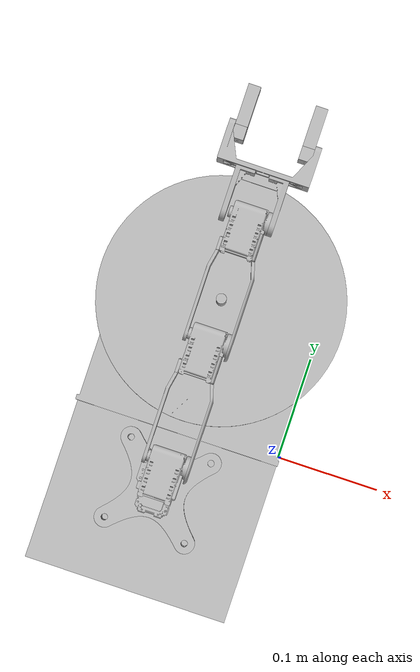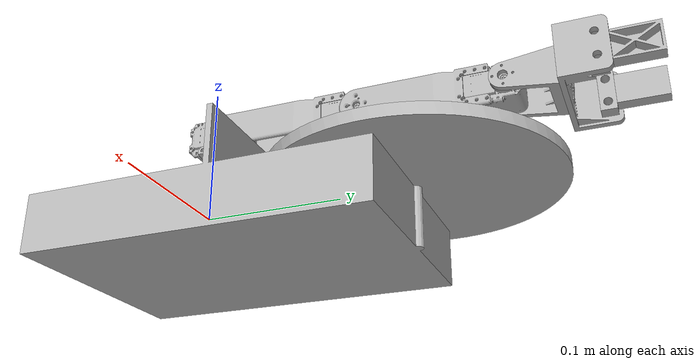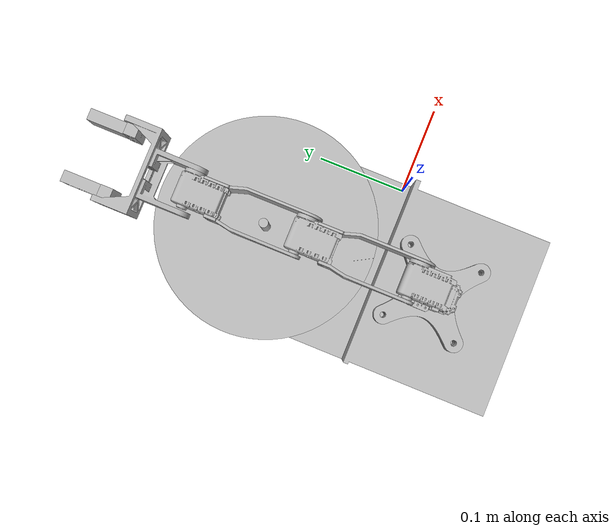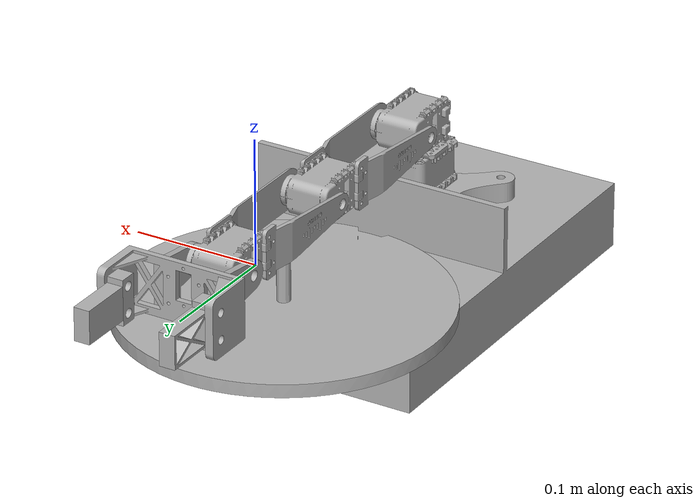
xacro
<?xml version="1.0" ?>
<robot name="stubby_complete" xmlns:xacro="http://www.ros.org/wiki/xacro">

<xacro:include filename="$(find stubby_complete_description)/urdf/materials.xacro" />
<xacro:include filename="$(find stubby_complete_description)/urdf/stubby_complete.trans" />
<xacro:include filename="$(find stubby_complete_description)/urdf/stubby_complete.gazebo" />
<link name="base_link">
  <inertial>
    <origin rpy="0 0 0" xyz="-0.09999999999999991 -0.020966127283006095 0.021818497006580385"/>
    <mass value="2.9547595128701887"/>
    <inertia ixx="0.021203" ixy="-0.0" ixz="-0.0" iyy="0.010579" iyz="-6.5e-05" izz="0.030287"/>
  </inertial>
  <visual>
    <origin rpy="0 0 0" xyz="0 0 0"/>
    <geometry>
      <mesh filename="package://stubby_complete_description/meshes/base_link.stl" scale="0.001 0.001 0.001"/>
    </geometry>
    <material name="silver"/>
  </visual>
  <collision>
    <origin rpy="0 0 0" xyz="0 0 0"/>
    <geometry>
      <mesh filename="package://stubby_complete_description/meshes/base_link.stl" scale="0.001 0.001 0.001"/>
    </geometry>
  </collision>
</link>

<link name="Component1_1">
  <inertial>
    <origin rpy="0 0 0" xyz="-0.04000000000451927 -0.03980214384253428 0.008090034598972902"/>
    <mass value="0.4759246467338889"/>
    <inertia ixx="0.000408" ixy="0.0" ixz="0.0" iyy="0.000441" iyz="-0.0" izz="0.000831"/>
  </inertial>
  <visual>
    <origin rpy="0 0 0" xyz="0.06 0.026523 -0.045914"/>
    <geometry>
      <mesh filename="package://stubby_complete_description/meshes/Component1_1.stl" scale="0.001 0.001 0.001"/>
    </geometry>
    <material name="silver"/>
  </visual>
  <collision>
    <origin rpy="0 0 0" xyz="0.06 0.026523 -0.045914"/>
    <geometry>
      <mesh filename="package://stubby_complete_description/meshes/Component1_1.stl" scale="0.001 0.001 0.001"/>
    </geometry>
  </collision>
</link>

<link name="Component2_1">
  <inertial>
    <origin rpy="0 0 0" xyz="-3.1092385663913924e-05 -0.012761856959488546 0.017058190511466446"/>
    <mass value="0.04244091097100989"/>
    <inertia ixx="1.2e-05" ixy="-0.0" ixz="0.0" iyy="7e-06" iyz="-0.0" izz="1e-05"/>
  </inertial>
  <visual>
    <origin rpy="0 0 0" xyz="0.1 0.052023 -0.060914"/>
    <geometry>
      <mesh filename="package://stubby_complete_description/meshes/Component2_1.stl" scale="0.001 0.001 0.001"/>
    </geometry>
    <material name="silver"/>
  </visual>
  <collision>
    <origin rpy="0 0 0" xyz="0.1 0.052023 -0.060914"/>
    <geometry>
      <mesh filename="package://stubby_complete_description/meshes/Component2_1.stl" scale="0.001 0.001 0.001"/>
    </geometry>
  </collision>
</link>

<link name="Component3_1">
  <inertial>
    <origin rpy="0 0 0" xyz="-3.2040751634265785e-05 4.2101147429418617e-07 0.002337181396787208"/>
    <mass value="0.02417691266422109"/>
    <inertia ixx="1e-06" ixy="-0.0" ixz="-0.0" iyy="4e-06" iyz="-0.0" izz="5e-06"/>
  </inertial>
  <visual>
    <origin rpy="0 0 0" xyz="0.1 0.052023 -0.097914"/>
    <geometry>
      <mesh filename="package://stubby_complete_description/meshes/Component3_1.stl" scale="0.001 0.001 0.001"/>
    </geometry>
    <material name="silver"/>
  </visual>
  <collision>
    <origin rpy="0 0 0" xyz="0.1 0.052023 -0.097914"/>
    <geometry>
      <mesh filename="package://stubby_complete_description/meshes/Component3_1.stl" scale="0.001 0.001 0.001"/>
    </geometry>
  </collision>
</link>

<link name="Component4_1">
  <inertial>
    <origin rpy="0 0 0" xyz="-0.01494141726061049 -0.006261856959488575 0.013530700157741146"/>
    <mass value="0.04244091097100989"/>
    <inertia ixx="1e-05" ixy="-0.0" ixz="-0.0" iyy="7e-06" iyz="0.0" izz="1.2e-05"/>
  </inertial>
  <visual>
    <origin rpy="0 0 0" xyz="0.084 0.044023 -0.103414"/>
    <geometry>
      <mesh filename="package://stubby_complete_description/meshes/Component4_1.stl" scale="0.001 0.001 0.001"/>
    </geometry>
    <material name="silver"/>
  </visual>
  <collision>
    <origin rpy="0 0 0" xyz="0.084 0.044023 -0.103414"/>
    <geometry>
      <mesh filename="package://stubby_complete_description/meshes/Component4_1.stl" scale="0.001 0.001 0.001"/>
    </geometry>
  </collision>
</link>

<link name="Component5_1">
  <inertial>
    <origin rpy="0 0 0" xyz="0.000323439859071295 0.044213030801076594 1.0167311355765984e-05"/>
    <mass value="0.07320231395363634"/>
    <inertia ixx="8e-05" ixy="4e-06" ixz="0.0" iyy="6e-06" iyz="-0.0" izz="7.5e-05"/>
  </inertial>
  <visual>
    <origin rpy="0 0 0" xyz="0.079 0.037523 -0.116914"/>
    <geometry>
      <mesh filename="package://stubby_complete_description/meshes/Component5_1.stl" scale="0.001 0.001 0.001"/>
    </geometry>
    <material name="silver"/>
  </visual>
  <collision>
    <origin rpy="0 0 0" xyz="0.079 0.037523 -0.116914"/>
    <geometry>
      <mesh filename="package://stubby_complete_description/meshes/Component5_1.stl" scale="0.001 0.001 0.001"/>
    </geometry>
  </collision>
</link>

<link name="Component6_1">
  <inertial>
    <origin rpy="0 0 0" xyz="-0.01494141726061049 0.01773814304051132 -0.013469299842258711"/>
    <mass value="0.04244091097100989"/>
    <inertia ixx="1e-05" ixy="-0.0" ixz="-0.0" iyy="7e-06" iyz="0.0" izz="1.2e-05"/>
  </inertial>
  <visual>
    <origin rpy="0 0 0" xyz="0.084 -0.051977 -0.130414"/>
    <geometry>
      <mesh filename="package://stubby_complete_description/meshes/Component6_1.stl" scale="0.001 0.001 0.001"/>
    </geometry>
    <material name="silver"/>
  </visual>
  <collision>
    <origin rpy="0 0 0" xyz="0.084 -0.051977 -0.130414"/>
    <geometry>
      <mesh filename="package://stubby_complete_description/meshes/Component6_1.stl" scale="0.001 0.001 0.001"/>
    </geometry>
  </collision>
</link>

<link name="Component7_1">
  <inertial>
    <origin rpy="0 0 0" xyz="-0.003787166400802497 -0.03908271518949953 -0.013398484021248727"/>
    <mass value="0.05604795467246254"/>
    <inertia ixx="4.5e-05" ixy="-1e-06" ixz="-0.0" iyy="4e-06" iyz="-0.0" izz="4.1e-05"/>
  </inertial>
  <visual>
    <origin rpy="0 0 0" xyz="0.116 -0.051977 -0.130414"/>
    <geometry>
      <mesh filename="package://stubby_complete_description/meshes/Component7_1.stl" scale="0.001 0.001 0.001"/>
    </geometry>
    <material name="silver"/>
  </visual>
  <collision>
    <origin rpy="0 0 0" xyz="0.116 -0.051977 -0.130414"/>
    <geometry>
      <mesh filename="package://stubby_complete_description/meshes/Component7_1.stl" scale="0.001 0.001 0.001"/>
    </geometry>
  </collision>
</link>

<link name="Component8_1">
  <inertial>
    <origin rpy="0 0 0" xyz="0.00032343985907133666 0.04421303080107655 1.0167311355960273e-05"/>
    <mass value="0.07320231395363634"/>
    <inertia ixx="8e-05" ixy="4e-06" ixz="0.0" iyy="6e-06" iyz="-0.0" izz="7.5e-05"/>
  </inertial>
  <visual>
    <origin rpy="0 0 0" xyz="0.079 -0.082477 -0.116914"/>
    <geometry>
      <mesh filename="package://stubby_complete_description/meshes/Component8_1.stl" scale="0.001 0.001 0.001"/>
    </geometry>
    <material name="silver"/>
  </visual>
  <collision>
    <origin rpy="0 0 0" xyz="0.079 -0.082477 -0.116914"/>
    <geometry>
      <mesh filename="package://stubby_complete_description/meshes/Component8_1.stl" scale="0.001 0.001 0.001"/>
    </geometry>
  </collision>
</link>

<link name="Component9_1">
  <inertial>
    <origin rpy="0 0 0" xyz="-0.014941417260610448 0.017738143040511356 -0.01346929984225867"/>
    <mass value="0.04244091097100989"/>
    <inertia ixx="1e-05" ixy="-0.0" ixz="-0.0" iyy="7e-06" iyz="0.0" izz="1.2e-05"/>
  </inertial>
  <visual>
    <origin rpy="0 0 0" xyz="0.084 -0.171977 -0.130414"/>
    <geometry>
      <mesh filename="package://stubby_complete_description/meshes/Component9_1.stl" scale="0.001 0.001 0.001"/>
    </geometry>
    <material name="silver"/>
  </visual>
  <collision>
    <origin rpy="0 0 0" xyz="0.084 -0.171977 -0.130414"/>
    <geometry>
      <mesh filename="package://stubby_complete_description/meshes/Component9_1.stl" scale="0.001 0.001 0.001"/>
    </geometry>
  </collision>
</link>

<link name="Component10_1">
  <inertial>
    <origin rpy="0 0 0" xyz="-0.0037871664008025108 -0.03908271518949957 -0.013398484021248672"/>
    <mass value="0.05604795467246254"/>
    <inertia ixx="4.5e-05" ixy="-1e-06" ixz="-0.0" iyy="4e-06" iyz="-0.0" izz="4.1e-05"/>
  </inertial>
  <visual>
    <origin rpy="0 0 0" xyz="0.116 -0.171977 -0.130414"/>
    <geometry>
      <mesh filename="package://stubby_complete_description/meshes/Component10_1.stl" scale="0.001 0.001 0.001"/>
    </geometry>
    <material name="silver"/>
  </visual>
  <collision>
    <origin rpy="0 0 0" xyz="0.116 -0.171977 -0.130414"/>
    <geometry>
      <mesh filename="package://stubby_complete_description/meshes/Component10_1.stl" scale="0.001 0.001 0.001"/>
    </geometry>
  </collision>
</link>

<link name="Component11_1">
  <inertial>
    <origin rpy="0 0 0" xyz="-0.021096269692649494 0.02403068850135351 -0.0008093901396380859"/>
    <mass value="0.13274101174114958"/>
    <inertia ixx="4e-05" ixy="-0.0" ixz="0.0" iyy="7.2e-05" iyz="1e-06" izz="9.3e-05"/>
  </inertial>
  <visual>
    <origin rpy="0 0 0" xyz="0.079 -0.202477 -0.116914"/>
    <geometry>
      <mesh filename="package://stubby_complete_description/meshes/Component11_1.stl" scale="0.001 0.001 0.001"/>
    </geometry>
    <material name="silver"/>
  </visual>
  <collision>
    <origin rpy="0 0 0" xyz="0.079 -0.202477 -0.116914"/>
    <geometry>
      <mesh filename="package://stubby_complete_description/meshes/Component11_1.stl" scale="0.001 0.001 0.001"/>
    </geometry>
  </collision>
</link>

<link name="Component12_1">
  <inertial>
    <origin rpy="0 0 0" xyz="0.012000002645184221 0.013803147559605988 0.009796072677114534"/>
    <mass value="0.24061936425261632"/>
    <inertia ixx="8.2e-05" ixy="0.0" ixz="0.0" iyy="0.00037" iyz="-1e-06" izz="0.000359"/>
  </inertial>
  <visual>
    <origin rpy="0 0 0" xyz="0.112 -0.244477 -0.106914"/>
    <geometry>
      <mesh filename="package://stubby_complete_description/meshes/Component12_1.stl" scale="0.001 0.001 0.001"/>
    </geometry>
    <material name="silver"/>
  </visual>
  <collision>
    <origin rpy="0 0 0" xyz="0.112 -0.244477 -0.106914"/>
    <geometry>
      <mesh filename="package://stubby_complete_description/meshes/Component12_1.stl" scale="0.001 0.001 0.001"/>
    </geometry>
  </collision>
</link>

<link name="Component13_1">
  <inertial>
    <origin rpy="0 0 0" xyz="-0.005999999999999797 4.2101146963124947e-07 -0.010000392072206168"/>
    <mass value="0.03388498185890325"/>
    <inertia ixx="4e-06" ixy="0.0" ixz="0.0" iyy="4e-06" iyz="0.0" izz="1e-06"/>
  </inertial>
  <visual>
    <origin rpy="0 0 0" xyz="0.061 -0.273777 -0.126914"/>
    <geometry>
      <mesh filename="package://stubby_complete_description/meshes/Component13_1.stl" scale="0.001 0.001 0.001"/>
    </geometry>
    <material name="silver"/>
  </visual>
  <collision>
    <origin rpy="0 0 0" xyz="0.061 -0.273777 -0.126914"/>
    <geometry>
      <mesh filename="package://stubby_complete_description/meshes/Component13_1.stl" scale="0.001 0.001 0.001"/>
    </geometry>
  </collision>
</link>

<link name="Component14_1">
  <inertial>
    <origin rpy="0 0 0" xyz="0.006000000000000255 4.2101146963124947e-07 -0.010000392072206238"/>
    <mass value="0.03388498185890325"/>
    <inertia ixx="4e-06" ixy="0.0" ixz="-0.0" iyy="4e-06" iyz="0.0" izz="1e-06"/>
  </inertial>
  <visual>
    <origin rpy="0 0 0" xyz="0.139 -0.273777 -0.126914"/>
    <geometry>
      <mesh filename="package://stubby_complete_description/meshes/Component14_1.stl" scale="0.001 0.001 0.001"/>
    </geometry>
    <material name="silver"/>
  </visual>
  <collision>
    <origin rpy="0 0 0" xyz="0.139 -0.273777 -0.126914"/>
    <geometry>
      <mesh filename="package://stubby_complete_description/meshes/Component14_1.stl" scale="0.001 0.001 0.001"/>
    </geometry>
  </collision>
</link>

<link name="Component15_1">
  <inertial>
    <origin rpy="0 0 0" xyz="0.0009965764718817827 0.020031481883907132 -3.9222792255766414e-07"/>
    <mass value="0.047142162662326015"/>
    <inertia ixx="1.1e-05" ixy="0.0" ixz="0.0" iyy="4e-06" iyz="0.0" izz="8e-06"/>
  </inertial>
  <visual>
    <origin rpy="0 0 0" xyz="0.133 -0.280277 -0.116914"/>
    <geometry>
      <mesh filename="package://stubby_complete_description/meshes/Component15_1.stl" scale="0.001 0.001 0.001"/>
    </geometry>
    <material name="silver"/>
  </visual>
  <collision>
    <origin rpy="0 0 0" xyz="0.133 -0.280277 -0.116914"/>
    <geometry>
      <mesh filename="package://stubby_complete_description/meshes/Component15_1.stl" scale="0.001 0.001 0.001"/>
    </geometry>
  </collision>
</link>

<link name="Component16_1">
  <inertial>
    <origin rpy="0 0 0" xyz="-0.0009965764718812414 0.020031481883907132 -3.9222792257154193e-07"/>
    <mass value="0.047142162662326015"/>
    <inertia ixx="1.1e-05" ixy="-0.0" ixz="-0.0" iyy="4e-06" iyz="-0.0" izz="8e-06"/>
  </inertial>
  <visual>
    <origin rpy="0 0 0" xyz="0.067 -0.280277 -0.116914"/>
    <geometry>
      <mesh filename="package://stubby_complete_description/meshes/Component16_1.stl" scale="0.001 0.001 0.001"/>
    </geometry>
    <material name="silver"/>
  </visual>
  <collision>
    <origin rpy="0 0 0" xyz="0.067 -0.280277 -0.116914"/>
    <geometry>
      <mesh filename="package://stubby_complete_description/meshes/Component16_1.stl" scale="0.001 0.001 0.001"/>
    </geometry>
  </collision>
</link>

<link name="Component17_1">
  <inertial>
    <origin rpy="0 0 0" xyz="-1.734723475976807e-15 0.00020255311593160574 0.004993320817949488"/>
    <mass value="0.4507941946898463"/>
    <inertia ixx="0.001622" ixy="-0.0" ixz="0.0" iyy="0.001632" iyz="-0.0" izz="0.003247"/>
  </inertial>
  <visual>
    <origin rpy="0 0 0" xyz="0.1 -0.123477 -0.045914"/>
    <geometry>
      <mesh filename="package://stubby_complete_description/meshes/Component17_1.stl" scale="0.001 0.001 0.001"/>
    </geometry>
    <material name="silver"/>
  </visual>
  <collision>
    <origin rpy="0 0 0" xyz="0.1 -0.123477 -0.045914"/>
    <geometry>
      <mesh filename="package://stubby_complete_description/meshes/Component17_1.stl" scale="0.001 0.001 0.001"/>
    </geometry>
  </collision>
</link>

<joint name="Rigid1" type="fixed">
  <origin rpy="0 0 0" xyz="-0.06 -0.026523 0.045914"/>
  <parent link="base_link"/>
  <child link="Component1_1"/>
</joint>

<joint name="Rigid2" type="fixed">
  <origin rpy="0 0 0" xyz="-0.04 -0.0255 0.015"/>
  <parent link="Component1_1"/>
  <child link="Component2_1"/>
</joint>

<joint name="yaw" type="continuous">
  <origin rpy="0 0 0" xyz="0.0 0.0 0.037"/>
  <parent link="Component2_1"/>
  <child link="Component3_1"/>
  <axis xyz="0.0 -0.0 1.0"/>
</joint>

<joint name="Rigid4" type="fixed">
  <origin rpy="0 0 0" xyz="0.016 0.008 0.0055"/>
  <parent link="Component3_1"/>
  <child link="Component4_1"/>
</joint>

<joint name="Rev1" type="continuous">
  <origin rpy="0 0 0" xyz="0.005 0.0065 0.0135"/>
  <parent link="Component4_1"/>
  <child link="Component5_1"/>
  <axis xyz="1.0 -0.0 0.0"/>
</joint>

<joint name="Rigid6" type="fixed">
  <origin rpy="0 0 0" xyz="-0.005 0.0895 0.0135"/>
  <parent link="Component5_1"/>
  <child link="Component6_1"/>
</joint>

<joint name="Rigid7" type="fixed">
  <origin rpy="0 0 0" xyz="-0.032 0.0 0.0"/>
  <parent link="Component6_1"/>
  <child link="Component7_1"/>
</joint>

<joint name="Rev2" type="continuous">
  <origin rpy="0 0 0" xyz="0.005 0.0305 -0.0135"/>
  <parent link="Component6_1"/>
  <child link="Component8_1"/>
  <axis xyz="1.0 -0.0 0.0"/>
</joint>

<joint name="Rigid9" type="fixed">
  <origin rpy="0 0 0" xyz="-0.005 0.0895 0.0135"/>
  <parent link="Component8_1"/>
  <child link="Component9_1"/>
</joint>

<joint name="Rigid10" type="fixed">
  <origin rpy="0 0 0" xyz="-0.032 0.0 0.0"/>
  <parent link="Component9_1"/>
  <child link="Component10_1"/>
</joint>

<joint name="gripAngle" type="continuous">
  <origin rpy="0 0 0" xyz="0.005 0.0305 -0.0135"/>
  <parent link="Component9_1"/>
  <child link="Component11_1"/>
  <axis xyz="1.0 -0.0 0.0"/>
</joint>

<joint name="Rigid12" type="fixed">
  <origin rpy="0 0 0" xyz="-0.033 0.042 -0.01"/>
  <parent link="Component11_1"/>
  <child link="Component12_1"/>
</joint>

<joint name="Rigid13" type="fixed">
  <origin rpy="0 0 0" xyz="0.051 0.0293 0.02"/>
  <parent link="Component12_1"/>
  <child link="Component13_1"/>
</joint>

<joint name="Rigid14" type="fixed">
  <origin rpy="0 0 0" xyz="-0.027 0.0293 0.02"/>
  <parent link="Component12_1"/>
  <child link="Component14_1"/>
</joint>

<joint name="Rigid15" type="fixed">
  <origin rpy="0 0 0" xyz="0.006 0.0065 -0.01"/>
  <parent link="Component14_1"/>
  <child link="Component15_1"/>
</joint>

<joint name="Rigid16" type="fixed">
  <origin rpy="0 0 0" xyz="-0.006 0.0065 -0.01"/>
  <parent link="Component13_1"/>
  <child link="Component16_1"/>
</joint>

<joint name="platformAngle" type="continuous">
  <origin rpy="0 0 0" xyz="-0.1 0.123477 0.045914"/>
  <parent link="base_link"/>
  <child link="Component17_1"/>
  <axis xyz="0.0 -0.0 1.0"/>
</joint>

</robot>

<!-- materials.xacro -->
<robot name="stubby_complete" xmlns:xacro="http://www.ros.org/wiki/xacro" >

<material name="silver">
  <color rgba="0.700 0.700 0.700 1.000"/>
</material>

</robot>

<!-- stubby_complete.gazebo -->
<robot name="stubby_complete" xmlns:xacro="http://www.ros.org/wiki/xacro" >

<xacro:property name="body_color" value="Gazebo/Silver" />

<gazebo>
  <plugin filename="libgazebo_ros_control.so" name="control"/>
</gazebo>
<gazebo reference="base_link">
  <material>${body_color}</material>
  <mu1>0.2</mu1>
  <mu2>0.2</mu2>
  <selfCollide>true</selfCollide>
  <gravity>true</gravity>
</gazebo>

<gazebo reference="Component1_1">
  <material>${body_color}</material>
  <mu1>0.2</mu1>
  <mu2>0.2</mu2>
  <selfCollide>true</selfCollide>
</gazebo>

<gazebo reference="Component2_1">
  <material>${body_color}</material>
  <mu1>0.2</mu1>
  <mu2>0.2</mu2>
  <selfCollide>true</selfCollide>
</gazebo>

<gazebo reference="Component3_1">
  <material>${body_color}</material>
  <mu1>0.2</mu1>
  <mu2>0.2</mu2>
  <selfCollide>true</selfCollide>
</gazebo>

<gazebo reference="Component4_1">
  <material>${body_color}</material>
  <mu1>0.2</mu1>
  <mu2>0.2</mu2>
  <selfCollide>true</selfCollide>
</gazebo>

<gazebo reference="Component5_1">
  <material>${body_color}</material>
  <mu1>0.2</mu1>
  <mu2>0.2</mu2>
  <selfCollide>true</selfCollide>
</gazebo>

<gazebo reference="Component6_1">
  <material>${body_color}</material>
  <mu1>0.2</mu1>
  <mu2>0.2</mu2>
  <selfCollide>true</selfCollide>
</gazebo>

<gazebo reference="Component7_1">
  <material>${body_color}</material>
  <mu1>0.2</mu1>
  <mu2>0.2</mu2>
  <selfCollide>true</selfCollide>
</gazebo>

<gazebo reference="Component8_1">
  <material>${body_color}</material>
  <mu1>0.2</mu1>
  <mu2>0.2</mu2>
  <selfCollide>true</selfCollide>
</gazebo>

<gazebo reference="Component9_1">
  <material>${body_color}</material>
  <mu1>0.2</mu1>
  <mu2>0.2</mu2>
  <selfCollide>true</selfCollide>
</gazebo>

<gazebo reference="Component10_1">
  <material>${body_color}</material>
  <mu1>0.2</mu1>
  <mu2>0.2</mu2>
  <selfCollide>true</selfCollide>
</gazebo>

<gazebo reference="Component11_1">
  <material>${body_color}</material>
  <mu1>0.2</mu1>
  <mu2>0.2</mu2>
  <selfCollide>true</selfCollide>
</gazebo>

<gazebo reference="Component12_1">
  <material>${body_color}</material>
  <mu1>0.2</mu1>
  <mu2>0.2</mu2>
  <selfCollide>true</selfCollide>
</gazebo>

<gazebo reference="Component13_1">
  <material>${body_color}</material>
  <mu1>0.2</mu1>
  <mu2>0.2</mu2>
  <selfCollide>true</selfCollide>
</gazebo>

<gazebo reference="Component14_1">
  <material>${body_color}</material>
  <mu1>0.2</mu1>
  <mu2>0.2</mu2>
  <selfCollide>true</selfCollide>
</gazebo>

<gazebo reference="Component15_1">
  <material>${body_color}</material>
  <mu1>0.2</mu1>
  <mu2>0.2</mu2>
  <selfCollide>true</selfCollide>
</gazebo>

<gazebo reference="Component16_1">
  <material>${body_color}</material>
  <mu1>0.2</mu1>
  <mu2>0.2</mu2>
  <selfCollide>true</selfCollide>
</gazebo>

<gazebo reference="Component17_1">
  <material>${body_color}</material>
  <mu1>0.2</mu1>
  <mu2>0.2</mu2>
  <selfCollide>true</selfCollide>
</gazebo>

</robot>
